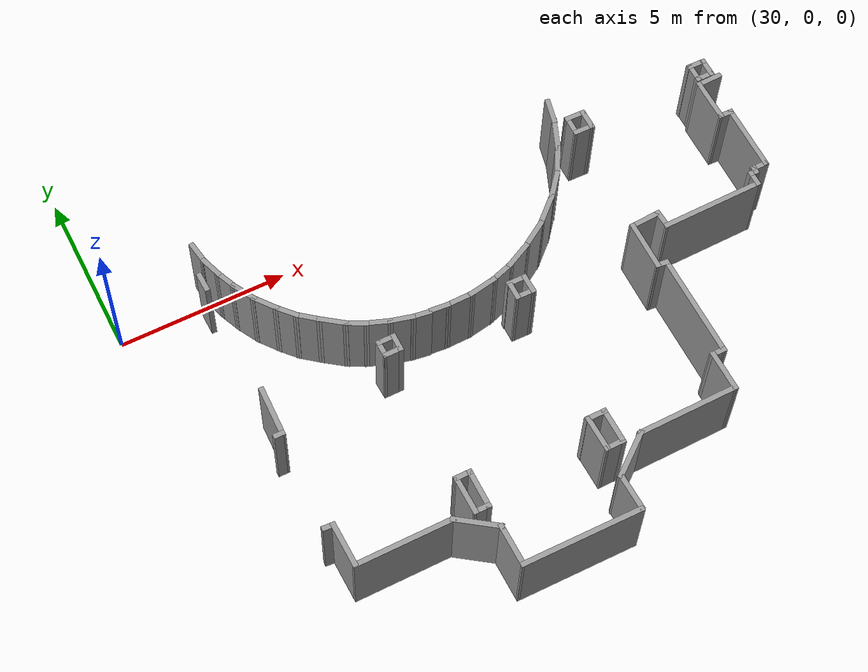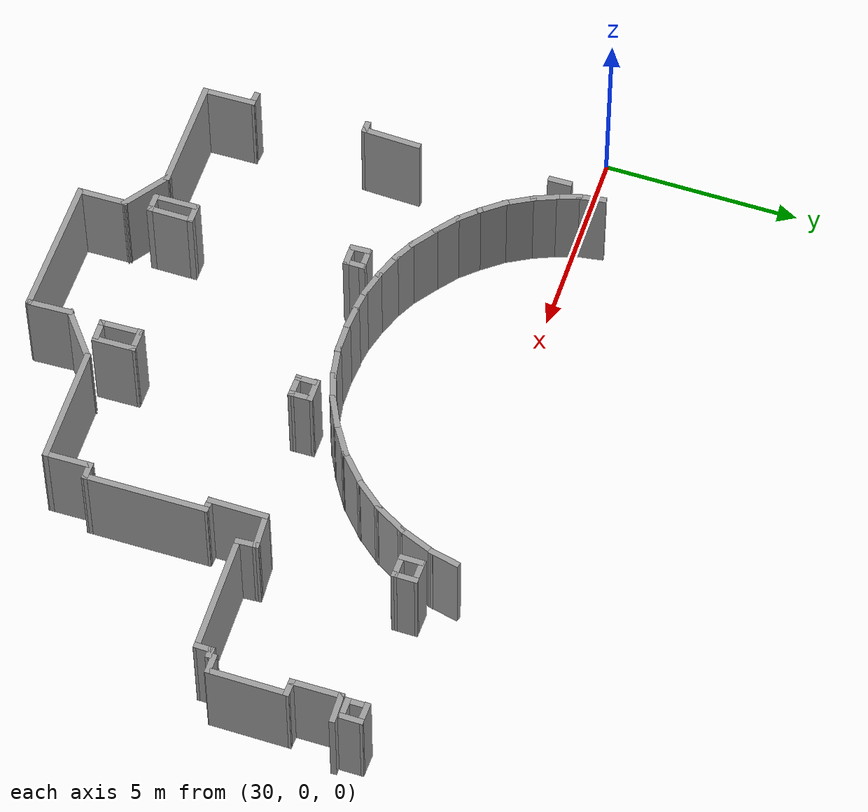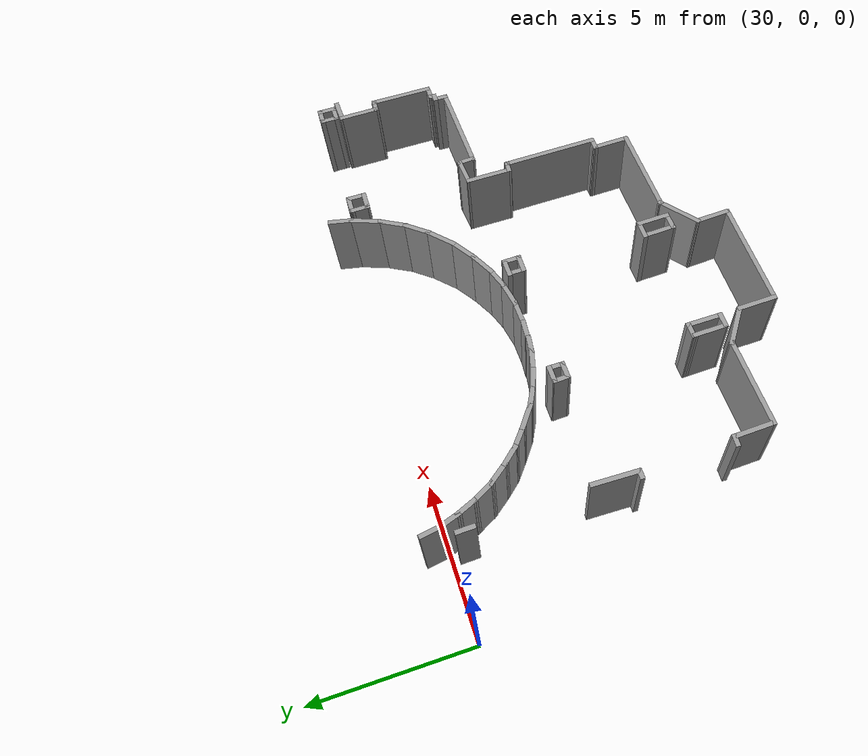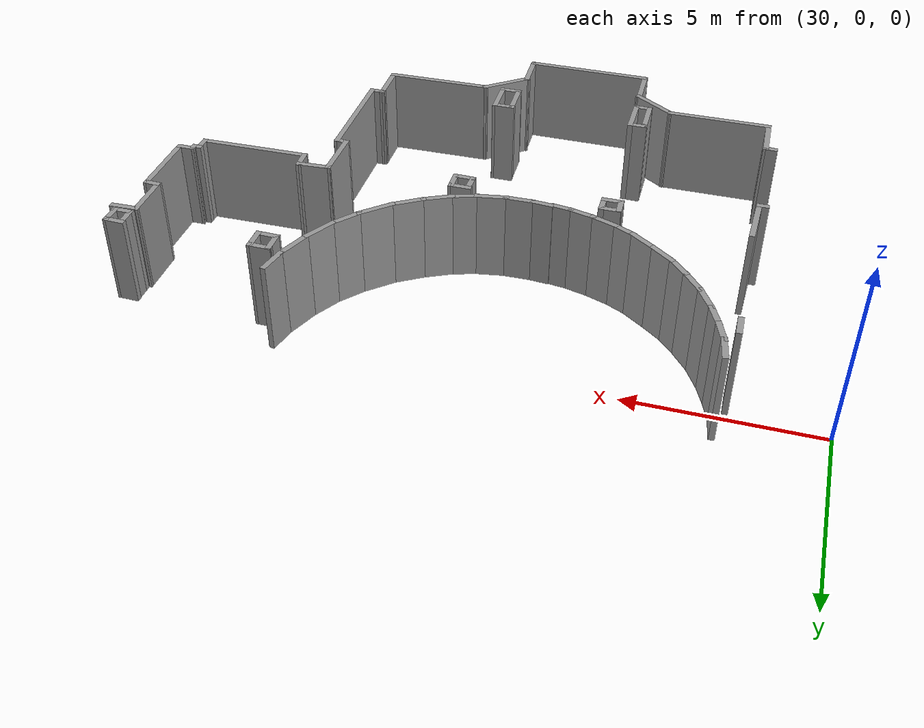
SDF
<sdf version="1.7">
 <model name="TD_n1_largo">
  <pose>-6.3187 -9.13173 0 0 -0 0</pose>
  <link name="Wall_437">
   <collision name="Wall_437_Collision">
    <geometry><box><size>1.53803 0.15 2.5</size></box></geometry>
    <pose>0 0 1.25 0 -0 0</pose>
   </collision>
   <visual name="Wall_437_Visual">
    <pose>0 0 1.25 0 -0 0</pose>
    <geometry><box><size>1.53803 0.15 2.5</size></box></geometry>
    <material>
     <script><uri>file://media/materials/scripts/gazebo.material</uri><name>Gazebo/Grey</name></script>
     <ambient>1 1 1 1</ambient>
    </material>
    <meta><layer>0</layer></meta>
   </visual>
   <pose>38.8578 4.26028 0 0 -0 -1.60412</pose>
  </link>
  <link name="Wall_438">
   <collision name="Wall_438_Collision">
    <geometry><box><size>0.335045 0.15 2.5</size></box></geometry>
    <pose>0 0 1.25 0 -0 0</pose>
   </collision>
   <visual name="Wall_438_Visual">
    <pose>0 0 1.25 0 -0 0</pose>
    <geometry><box><size>0.335045 0.15 2.5</size></box></geometry>
    <material>
     <script><uri>file://media/materials/scripts/gazebo.material</uri><name>Gazebo/Grey</name></script>
     <ambient>1 1 1 1</ambient>
    </material>
    <meta><layer>0</layer></meta>
   </visual>
   <pose>38.7422 3.56636 0 0 -0 3.14159</pose>
  </link>
  <link name="Wall_440">
   <collision name="Wall_440_Collision">
    <geometry><box><size>0.396963 0.15 2.5</size></box></geometry>
    <pose>0 0 1.25 0 -0 0</pose>
   </collision>
   <visual name="Wall_440_Visual">
    <pose>0 0 1.25 0 -0 0</pose>
    <geometry><box><size>0.396963 0.15 2.5</size></box></geometry>
    <material>
     <script><uri>file://media/materials/scripts/gazebo.material</uri><name>Gazebo/Grey</name></script>
     <ambient>1 1 1 1</ambient>
    </material>
    <meta><layer>0</layer></meta>
   </visual>
   <pose>38.7962 0.643183 0 0 -0 -0.070555</pose>
  </link>
  <link name="Wall_443">
   <collision name="Wall_443_Collision">
    <geometry><box><size>1.36789 0.15 2.5</size></box></geometry>
    <pose>0 0 1.25 0 -0 0</pose>
   </collision>
   <visual name="Wall_443_Visual">
    <pose>0 0 1.25 0 -0 0</pose>
    <geometry><box><size>1.36789 0.15 2.5</size></box></geometry>
    <material>
     <script><uri>file://media/materials/scripts/gazebo.material</uri><name>Gazebo/Grey</name></script>
     <ambient>1 1 1 1</ambient>
    </material>
    <meta><layer>0</layer></meta>
   </visual>
   <pose>38.9326 0.025767 0 0 -0 1.59222</pose>
  </link>
  <link name="Wall_445">
   <collision name="Wall_445_Collision">
    <geometry><box><size>2.94132 0.15 2.5</size></box></geometry>
    <pose>0 0 1.25 0 -0 0</pose>
   </collision>
   <visual name="Wall_445_Visual">
    <pose>0 0 1.25 0 -0 0</pose>
    <geometry><box><size>2.94132 0.15 2.5</size></box></geometry>
    <material>
     <script><uri>file://media/materials/scripts/gazebo.material</uri><name>Gazebo/Grey</name></script>
     <ambient>1 1 1 1</ambient>
    </material>
    <meta><layer>0</layer></meta>
   </visual>
   <pose>40.3413 -0.595973 0 0 -0 0.003115</pose>
  </link>
  <link name="Wall_446">
   <collision name="Wall_446_Collision">
    <geometry><box><size>1.41661 0.15 2.5</size></box></geometry>
    <pose>0 0 1.25 0 -0 0</pose>
   </collision>
   <visual name="Wall_446_Visual">
    <pose>0 0 1.25 0 -0 0</pose>
    <geometry><box><size>1.41661 0.15 2.5</size></box></geometry>
    <material>
     <script><uri>file://media/materials/scripts/gazebo.material</uri><name>Gazebo/Grey</name></script>
     <ambient>1 1 1 1</ambient>
    </material>
    <meta><layer>0</layer></meta>
   </visual>
   <pose>42.2631 -0.956842 0 0 -0 -0.614663</pose>
  </link>
  <link name="Wall_447">
   <collision name="Wall_447_Collision">
    <geometry><box><size>1.31535 0.15 2.5</size></box></geometry>
    <pose>0 0 1.25 0 -0 0</pose>
   </collision>
   <visual name="Wall_447_Visual">
    <pose>0 0 1.25 0 -0 0</pose>
    <geometry><box><size>1.31535 0.15 2.5</size></box></geometry>
    <material>
     <script><uri>file://media/materials/scripts/gazebo.material</uri><name>Gazebo/Grey</name></script>
     <ambient>1 1 1 1</ambient>
    </material>
    <meta><layer>0</layer></meta>
   </visual>
   <pose>42.7804 -1.90467 0 0 -0 -1.55587</pose>
  </link>
  <link name="Wall_448">
   <collision name="Wall_448_Collision">
    <geometry><box><size>3.59979 0.15 2.5</size></box></geometry>
    <pose>0 0 1.25 0 -0 0</pose>
   </collision>
   <visual name="Wall_448_Visual">
    <pose>0 0 1.25 0 -0 0</pose>
    <geometry><box><size>3.59979 0.15 2.5</size></box></geometry>
    <material>
     <script><uri>file://media/materials/scripts/gazebo.material</uri><name>Gazebo/Grey</name></script>
     <ambient>1 1 1 1</ambient>
    </material>
    <meta><layer>0</layer></meta>
   </visual>
   <pose>44.514 -2.4955 0 0 -0 -0.004765</pose>
  </link>
  <link name="Wall_450">
   <collision name="Wall_450_Collision">
    <geometry><box><size>1.15648 0.15 2.5</size></box></geometry>
    <pose>0 0 1.25 0 -0 0</pose>
   </collision>
   <visual name="Wall_450_Visual">
    <pose>0 0 1.25 0 -0 0</pose>
    <geometry><box><size>1.15648 0.15 2.5</size></box></geometry>
    <material>
     <script><uri>file://media/materials/scripts/gazebo.material</uri><name>Gazebo/Grey</name></script>
     <ambient>1 1 1 1</ambient>
    </material>
    <meta><layer>0</layer></meta>
   </visual>
   <pose>46.2389 -1.96065 0 0 -0 1.61078</pose>
  </link>
  <link name="Wall_451">
   <collision name="Wall_451_Collision">
    <geometry><box><size>1.51016 0.15 2.5</size></box></geometry>
    <pose>0 0 1.25 0 -0 0</pose>
   </collision>
   <visual name="Wall_451_Visual">
    <pose>0 0 1.25 0 -0 0</pose>
    <geometry><box><size>1.51016 0.15 2.5</size></box></geometry>
    <material>
     <script><uri>file://media/materials/scripts/gazebo.material</uri><name>Gazebo/Grey</name></script>
     <ambient>1 1 1 1</ambient>
    </material>
    <meta><layer>0</layer></meta>
   </visual>
   <pose>46.7518 -1.03543 0 0 -0 0.670122</pose>
  </link>
  <link name="Wall_452">
   <collision name="Wall_452_Collision">
    <geometry><box><size>3.04698 0.15 2.5</size></box></geometry>
    <pose>0 0 1.25 0 -0 0</pose>
   </collision>
   <visual name="Wall_452_Visual">
    <pose>0 0 1.25 0 -0 0</pose>
    <geometry><box><size>3.04698 0.15 2.5</size></box></geometry>
    <material>
     <script><uri>file://media/materials/scripts/gazebo.material</uri><name>Gazebo/Grey</name></script>
     <ambient>1 1 1 1</ambient>
    </material>
    <meta><layer>0</layer></meta>
   </visual>
   <pose>48.733 -0.592927 0 0 -0 0.013888</pose>
  </link>
  <link name="Wall_453">
   <collision name="Wall_453_Collision">
    <geometry><box><size>1.25643 0.15 2.5</size></box></geometry>
    <pose>0 0 1.25 0 -0 0</pose>
   </collision>
   <visual name="Wall_453_Visual">
    <pose>0 0 1.25 0 -0 0</pose>
    <geometry><box><size>1.25643 0.15 2.5</size></box></geometry>
    <material>
     <script><uri>file://media/materials/scripts/gazebo.material</uri><name>Gazebo/Grey</name></script>
     <ambient>1 1 1 1</ambient>
    </material>
    <meta><layer>0</layer></meta>
   </visual>
   <pose>50.1711 -0.01969 0 0 -0 1.58898</pose>
  </link>
  <link name="Wall_454">
   <collision name="Wall_454_Collision">
    <geometry><box><size>0.472445 0.15 2.5</size></box></geometry>
    <pose>0 0 1.25 0 -0 0</pose>
   </collision>
   <visual name="Wall_454_Visual">
    <pose>0 0 1.25 0 -0 0</pose>
    <geometry><box><size>0.472445 0.15 2.5</size></box></geometry>
    <material>
     <script><uri>file://media/materials/scripts/gazebo.material</uri><name>Gazebo/Grey</name></script>
     <ambient>1 1 1 1</ambient>
    </material>
    <meta><layer>0</layer></meta>
   </visual>
   <pose>50.3219 0.533433 0 0 -0 0</pose>
  </link>
  <link name="Wall_456">
   <collision name="Wall_456_Collision">
    <geometry><box><size>3.16286 0.15 2.5</size></box></geometry>
    <pose>0 0 1.25 0 -0 0</pose>
   </collision>
   <visual name="Wall_456_Visual">
    <pose>0 0 1.25 0 -0 0</pose>
    <geometry><box><size>3.16286 0.15 2.5</size></box></geometry>
    <material>
     <script><uri>file://media/materials/scripts/gazebo.material</uri><name>Gazebo/Grey</name></script>
     <ambient>1 1 1 1</ambient>
    </material>
    <meta><layer>0</layer></meta>
   </visual>
   <pose>50.467 2.03982 0 0 -0 1.58133</pose>
  </link>
  <link name="Wall_457">
   <collision name="Wall_457_Collision">
    <geometry><box><size>0.417329 0.15 2.5</size></box></geometry>
    <pose>0 0 1.25 0 -0 0</pose>
   </collision>
   <visual name="Wall_457_Visual">
    <pose>0 0 1.25 0 -0 0</pose>
    <geometry><box><size>0.417329 0.15 2.5</size></box></geometry>
    <material>
     <script><uri>file://media/materials/scripts/gazebo.material</uri><name>Gazebo/Grey</name></script>
     <ambient>1 1 1 1</ambient>
    </material>
    <meta><layer>0</layer></meta>
   </visual>
   <pose>50.3181 3.55952 0 0 -0 3.04192</pose>
  </link>
  <link name="Wall_458">
   <collision name="Wall_458_Collision">
    <geometry><box><size>1.53321 0.15 2.5</size></box></geometry>
    <pose>0 0 1.25 0 -0 0</pose>
   </collision>
   <visual name="Wall_458_Visual">
    <pose>0 0 1.25 0 -0 0</pose>
    <geometry><box><size>1.53321 0.15 2.5</size></box></geometry>
    <material>
     <script><uri>file://media/materials/scripts/gazebo.material</uri><name>Gazebo/Grey</name></script>
     <ambient>1 1 1 1</ambient>
    </material>
    <meta><layer>0</layer></meta>
   </visual>
   <pose>50.1851 4.26442 0 0 -0 1.5708</pose>
  </link>
  <link name="Wall_459">
   <collision name="Wall_459_Collision">
    <geometry><box><size>0.976321 0.15 2.5</size></box></geometry>
    <pose>0 0 1.25 0 -0 0</pose>
   </collision>
   <visual name="Wall_459_Visual">
    <pose>0 0 1.25 0 -0 0</pose>
    <geometry><box><size>0.976321 0.15 2.5</size></box></geometry>
    <material>
     <script><uri>file://media/materials/scripts/gazebo.material</uri><name>Gazebo/Grey</name></script>
     <ambient>1 1 1 1</ambient>
    </material>
    <meta><layer>0</layer></meta>
   </visual>
   <pose>50.5974 4.98263 0 0 -0 0.064427</pose>
  </link>
  <link name="Wall_460">
   <collision name="Wall_460_Collision">
    <geometry><box><size>0.602985 0.15 2.5</size></box></geometry>
    <pose>0 0 1.25 0 -0 0</pose>
   </collision>
   <visual name="Wall_460_Visual">
    <pose>0 0 1.25 0 -0 0</pose>
    <geometry><box><size>0.602985 0.15 2.5</size></box></geometry>
    <material>
     <script><uri>file://media/materials/scripts/gazebo.material</uri><name>Gazebo/Grey</name></script>
     <ambient>1 1 1 1</ambient>
    </material>
    <meta><layer>0</layer></meta>
   </visual>
   <pose>51.023 4.78313 0 0 -0 -1.51204</pose>
  </link>
  <link name="Wall_461">
   <collision name="Wall_461_Collision">
    <geometry><box><size>3.1031 0.15 2.5</size></box></geometry>
    <pose>0 0 1.25 0 -0 0</pose>
   </collision>
   <visual name="Wall_461_Visual">
    <pose>0 0 1.25 0 -0 0</pose>
    <geometry><box><size>3.1031 0.15 2.5</size></box></geometry>
    <material>
     <script><uri>file://media/materials/scripts/gazebo.material</uri><name>Gazebo/Grey</name></script>
     <ambient>1 1 1 1</ambient>
    </material>
    <meta><layer>0</layer></meta>
   </visual>
   <pose>52.5126 4.58363 0 0 -0 0.018016</pose>
  </link>
  <link name="Wall_462">
   <collision name="Wall_462_Collision">
    <geometry><box><size>0.44728 0.15 2.5</size></box></geometry>
    <pose>0 0 1.25 0 -0 0</pose>
   </collision>
   <visual name="Wall_462_Visual">
    <pose>0 0 1.25 0 -0 0</pose>
    <geometry><box><size>0.44728 0.15 2.5</size></box></geometry>
    <material>
     <script><uri>file://media/materials/scripts/gazebo.material</uri><name>Gazebo/Grey</name></script>
     <ambient>1 1 1 1</ambient>
    </material>
    <meta><layer>0</layer></meta>
   </visual>
   <pose>53.9913 4.75885 0 0 -0 1.5552</pose>
  </link>
  <link name="Wall_464">
   <collision name="Wall_464_Collision">
    <geometry><box><size>0.303496 0.15 2.5</size></box></geometry>
    <pose>0 0 1.25 0 -0 0</pose>
   </collision>
   <visual name="Wall_464_Visual">
    <pose>0 0 1.25 0 -0 0</pose>
    <geometry><box><size>0.303496 0.15 2.5</size></box></geometry>
    <material>
     <script><uri>file://media/materials/scripts/gazebo.material</uri><name>Gazebo/Grey</name></script>
     <ambient>1 1 1 1</ambient>
    </material>
    <meta><layer>0</layer></meta>
   </visual>
   <pose>54.0672 4.96232 0 0 -0 -0.028918</pose>
  </link>
  <link name="Wall_465">
   <collision name="Wall_465_Collision">
    <geometry><box><size>0.270359 0.15 2.5</size></box></geometry>
    <pose>0 0 1.25 0 -0 0</pose>
   </collision>
   <visual name="Wall_465_Visual">
    <pose>0 0 1.25 0 -0 0</pose>
    <geometry><box><size>0.270359 0.15 2.5</size></box></geometry>
    <material>
     <script><uri>file://media/materials/scripts/gazebo.material</uri><name>Gazebo/Grey</name></script>
     <ambient>1 1 1 1</ambient>
    </material>
    <meta><layer>0</layer></meta>
   </visual>
   <pose>54.1458 5.02025 0 0 -0 1.53956</pose>
  </link>
  <link name="Wall_466">
   <collision name="Wall_466_Collision">
    <geometry><box><size>0.529696 0.15 2.5</size></box></geometry>
    <pose>0 0 1.25 0 -0 0</pose>
   </collision>
   <visual name="Wall_466_Visual">
    <pose>0 0 1.25 0 -0 0</pose>
    <geometry><box><size>0.529696 0.15 2.5</size></box></geometry>
    <material>
     <script><uri>file://media/materials/scripts/gazebo.material</uri><name>Gazebo/Grey</name></script>
     <ambient>1 1 1 1</ambient>
    </material>
    <meta><layer>0</layer></meta>
   </visual>
   <pose>54.3376 5.0804 0 0 -0 0</pose>
  </link>
  <link name="Wall_468">
   <collision name="Wall_468_Collision">
    <geometry><box><size>2.05 0.15 2.5</size></box></geometry>
    <pose>0 0 1.25 0 -0 0</pose>
   </collision>
   <visual name="Wall_468_Visual">
    <pose>0 0 1.25 0 -0 0</pose>
    <geometry><box><size>2.05 0.15 2.5</size></box></geometry>
    <material>
     <script><uri>file://media/materials/scripts/gazebo.material</uri><name>Gazebo/Grey</name></script>
     <ambient>1 1 1 1</ambient>
    </material>
    <meta><layer>0</layer></meta>
   </visual>
   <pose>54.5309 6.0477 0 0 -0 1.5708</pose>
  </link>
  <link name="Wall_469">
   <collision name="Wall_469_Collision">
    <geometry><box><size>0.470156 0.15 2.5</size></box></geometry>
    <pose>0 0 1.25 0 -0 0</pose>
   </collision>
   <visual name="Wall_469_Visual">
    <pose>0 0 1.25 0 -0 0</pose>
    <geometry><box><size>0.470156 0.15 2.5</size></box></geometry>
    <material>
     <script><uri>file://media/materials/scripts/gazebo.material</uri><name>Gazebo/Grey</name></script>
     <ambient>1 1 1 1</ambient>
    </material>
    <meta><layer>0</layer></meta>
   </visual>
   <pose>54.3709 7.0027 0 0 -0 3.11035</pose>
  </link>
  <link name="Wall_470">
   <collision name="Wall_470_Collision">
    <geometry><box><size>1.35004 0.15 2.5</size></box></geometry>
    <pose>0 0 1.25 0 -0 0</pose>
   </collision>
   <visual name="Wall_470_Visual">
    <pose>0 0 1.25 0 -0 0</pose>
    <geometry><box><size>1.35004 0.15 2.5</size></box></geometry>
    <material>
     <script><uri>file://media/materials/scripts/gazebo.material</uri><name>Gazebo/Grey</name></script>
     <ambient>1 1 1 1</ambient>
    </material>
    <meta><layer>0</layer></meta>
   </visual>
   <pose>54.2059 7.6077 0 0 -0 1.57913</pose>
  </link>
  <link name="Wall_471">
   <collision name="Wall_471_Collision">
    <geometry><box><size>0.800308 0.15 2.5</size></box></geometry>
    <pose>0 0 1.25 0 -0 0</pose>
   </collision>
   <visual name="Wall_471_Visual">
    <pose>0 0 1.25 0 -0 0</pose>
    <geometry><box><size>0.800308 0.15 2.5</size></box></geometry>
    <material>
     <script><uri>file://media/materials/scripts/gazebo.material</uri><name>Gazebo/Grey</name></script>
     <ambient>1 1 1 1</ambient>
    </material>
    <meta><layer>0</layer></meta>
   </visual>
   <pose>54.5259 8.2177 0 0 -0 0.03076</pose>
  </link>
  <link name="Wall_481">
   <collision name="Wall_481_Collision">
    <geometry><box><size>0.644634 0.15 2.5</size></box></geometry>
    <pose>0 0 1.25 0 -0 0</pose>
   </collision>
   <visual name="Wall_481_Visual">
    <pose>0 0 1.25 0 -0 0</pose>
    <geometry><box><size>0.644634 0.15 2.5</size></box></geometry>
    <material>
     <script><uri>file://media/materials/scripts/gazebo.material</uri><name>Gazebo/Grey</name></script>
     <ambient>1 1 1 1</ambient>
    </material>
    <meta><layer>0</layer></meta>
   </visual>
   <pose>50.494 8.85323 0 0 -0 -0.023252</pose>
  </link>
  <link name="Wall_482">
   <collision name="Wall_482_Collision">
    <geometry><box><size>0.656 0.15 2.5</size></box></geometry>
    <pose>0 0 1.25 0 -0 0</pose>
   </collision>
   <visual name="Wall_482_Visual">
    <pose>0 0 1.25 0 -0 0</pose>
    <geometry><box><size>0.656 0.15 2.5</size></box></geometry>
    <material>
     <script><uri>file://media/materials/scripts/gazebo.material</uri><name>Gazebo/Grey</name></script>
     <ambient>1 1 1 1</ambient>
    </material>
    <meta><layer>0</layer></meta>
   </visual>
   <pose>50.7413 8.59448 0 0 -0 -1.5708</pose>
  </link>
  <link name="Wall_483">
   <collision name="Wall_483_Collision">
    <geometry><box><size>0.644634 0.15 2.5</size></box></geometry>
    <pose>0 0 1.25 0 -0 0</pose>
   </collision>
   <visual name="Wall_483_Visual">
    <pose>0 0 1.25 0 -0 0</pose>
    <geometry><box><size>0.644634 0.15 2.5</size></box></geometry>
    <material>
     <script><uri>file://media/materials/scripts/gazebo.material</uri><name>Gazebo/Grey</name></script>
     <ambient>1 1 1 1</ambient>
    </material>
    <meta><layer>0</layer></meta>
   </visual>
   <pose>50.494 8.34723 0 0 -0 3.11834</pose>
  </link>
  <link name="Wall_484">
   <collision name="Wall_484_Collision">
    <geometry><box><size>0.6215 0.15 2.5</size></box></geometry>
    <pose>0 0 1.25 0 -0 0</pose>
   </collision>
   <visual name="Wall_484_Visual">
    <pose>0 0 1.25 0 -0 0</pose>
    <geometry><box><size>0.6215 0.15 2.5</size></box></geometry>
    <material>
     <script><uri>file://media/materials/scripts/gazebo.material</uri><name>Gazebo/Grey</name></script>
     <ambient>1 1 1 1</ambient>
    </material>
    <meta><layer>0</layer></meta>
   </visual>
   <pose>50.2468 8.58873 0 0 -0 1.5708</pose>
  </link>
  <link name="Wall_486">
   <collision name="Wall_486_Collision">
    <geometry><box><size>0.587151 0.15 2.5</size></box></geometry>
    <pose>0 0 1.25 0 -0 0</pose>
   </collision>
   <visual name="Wall_486_Visual">
    <pose>0 0 1.25 0 -0 0</pose>
    <geometry><box><size>0.587151 0.15 2.5</size></box></geometry>
    <material>
     <script><uri>file://media/materials/scripts/gazebo.material</uri><name>Gazebo/Grey</name></script>
     <ambient>1 1 1 1</ambient>
    </material>
    <meta><layer>0</layer></meta>
   </visual>
   <pose>54.4788 8.85323 0 0 -0 -0.02631</pose>
  </link>
  <link name="Wall_487">
   <collision name="Wall_487_Collision">
    <geometry><box><size>0.61 0.15 2.5</size></box></geometry>
    <pose>0 0 1.25 0 -0 0</pose>
   </collision>
   <visual name="Wall_487_Visual">
    <pose>0 0 1.25 0 -0 0</pose>
    <geometry><box><size>0.61 0.15 2.5</size></box></geometry>
    <material>
     <script><uri>file://media/materials/scripts/gazebo.material</uri><name>Gazebo/Grey</name></script>
     <ambient>1 1 1 1</ambient>
    </material>
    <meta><layer>0</layer></meta>
   </visual>
   <pose>54.6973 8.61748 0 0 -0 -1.5708</pose>
  </link>
  <link name="Wall_488">
   <collision name="Wall_488_Collision">
    <geometry><box><size>0.5755 0.15 2.5</size></box></geometry>
    <pose>0 0 1.25 0 -0 0</pose>
   </collision>
   <visual name="Wall_488_Visual">
    <pose>0 0 1.25 0 -0 0</pose>
    <geometry><box><size>0.5755 0.15 2.5</size></box></geometry>
    <material>
     <script><uri>file://media/materials/scripts/gazebo.material</uri><name>Gazebo/Grey</name></script>
     <ambient>1 1 1 1</ambient>
    </material>
    <meta><layer>0</layer></meta>
   </visual>
   <pose>54.4845 8.38748 0 0 -0 3.14159</pose>
  </link>
  <link name="Wall_489">
   <collision name="Wall_489_Collision">
    <geometry><box><size>0.587 0.15 2.5</size></box></geometry>
    <pose>0 0 1.25 0 -0 0</pose>
   </collision>
   <visual name="Wall_489_Visual">
    <pose>0 0 1.25 0 -0 0</pose>
    <geometry><box><size>0.587 0.15 2.5</size></box></geometry>
    <material>
     <script><uri>file://media/materials/scripts/gazebo.material</uri><name>Gazebo/Grey</name></script>
     <ambient>1 1 1 1</ambient>
    </material>
    <meta><layer>0</layer></meta>
   </visual>
   <pose>54.2718 8.60598 0 0 -0 1.5708</pose>
  </link>
  <link name="Wall_491">
   <collision name="Wall_491_Collision">
    <geometry><box><size>0.591316 0.15 2.5</size></box></geometry>
    <pose>0 0 1.25 0 -0 0</pose>
   </collision>
   <visual name="Wall_491_Visual">
    <pose>0 0 1.25 0 -0 0</pose>
    <geometry><box><size>0.591316 0.15 2.5</size></box></geometry>
    <material>
     <script><uri>file://media/materials/scripts/gazebo.material</uri><name>Gazebo/Grey</name></script>
     <ambient>1 1 1 1</ambient>
    </material>
    <meta><layer>0</layer></meta>
   </visual>
   <pose>42.5057 4.82608 0 0 -0 0</pose>
  </link>
  <link name="Wall_492">
   <collision name="Wall_492_Collision">
    <geometry><box><size>0.560918 0.15 2.5</size></box></geometry>
    <pose>0 0 1.25 0 -0 0</pose>
   </collision>
   <visual name="Wall_492_Visual">
    <pose>0 0 1.25 0 -0 0</pose>
    <geometry><box><size>0.560918 0.15 2.5</size></box></geometry>
    <material>
     <script><uri>file://media/materials/scripts/gazebo.material</uri><name>Gazebo/Grey</name></script>
     <ambient>1 1 1 1</ambient>
    </material>
    <meta><layer>0</layer></meta>
   </visual>
   <pose>42.7263 4.62076 0 0 -0 -1.5708</pose>
  </link>
  <link name="Wall_493">
   <collision name="Wall_493_Collision">
    <geometry><box><size>0.591316 0.15 2.5</size></box></geometry>
    <pose>0 0 1.25 0 -0 0</pose>
   </collision>
   <visual name="Wall_493_Visual">
    <pose>0 0 1.25 0 -0 0</pose>
    <geometry><box><size>0.591316 0.15 2.5</size></box></geometry>
    <material>
     <script><uri>file://media/materials/scripts/gazebo.material</uri><name>Gazebo/Grey</name></script>
     <ambient>1 1 1 1</ambient>
    </material>
    <meta><layer>0</layer></meta>
   </visual>
   <pose>42.5057 4.41545 0 0 -0 3.14159</pose>
  </link>
  <link name="Wall_494">
   <collision name="Wall_494_Collision">
    <geometry><box><size>0.530523 0.15 2.5</size></box></geometry>
    <pose>0 0 1.25 0 -0 0</pose>
   </collision>
   <visual name="Wall_494_Visual">
    <pose>0 0 1.25 0 -0 0</pose>
    <geometry><box><size>0.530523 0.15 2.5</size></box></geometry>
    <material>
     <script><uri>file://media/materials/scripts/gazebo.material</uri><name>Gazebo/Grey</name></script>
     <ambient>1 1 1 1</ambient>
    </material>
    <meta><layer>0</layer></meta>
   </visual>
   <pose>42.2776 4.60556 0 0 -0 1.61078</pose>
  </link>
  <link name="Wall_496">
   <collision name="Wall_496_Collision">
    <geometry><box><size>0.545428 0.15 2.5</size></box></geometry>
    <pose>0 0 1.25 0 -0 0</pose>
   </collision>
   <visual name="Wall_496_Visual">
    <pose>0 0 1.25 0 -0 0</pose>
    <geometry><box><size>0.545428 0.15 2.5</size></box></geometry>
    <material>
     <script><uri>file://media/materials/scripts/gazebo.material</uri><name>Gazebo/Grey</name></script>
     <ambient>1 1 1 1</ambient>
    </material>
    <meta><layer>0</layer></meta>
   </visual>
   <pose>42.5438 0.385128 0 0 -0 0</pose>
  </link>
  <link name="Wall_497">
   <collision name="Wall_497_Collision">
    <geometry><box><size>1.19951 0.15 2.5</size></box></geometry>
    <pose>0 0 1.25 0 -0 0</pose>
   </collision>
   <visual name="Wall_497_Visual">
    <pose>0 0 1.25 0 -0 0</pose>
    <geometry><box><size>1.19951 0.15 2.5</size></box></geometry>
    <material>
     <script><uri>file://media/materials/scripts/gazebo.material</uri><name>Gazebo/Grey</name></script>
     <ambient>1 1 1 1</ambient>
    </material>
    <meta><layer>0</layer></meta>
   </visual>
   <pose>42.7415 -0.139574 0 0 -0 -1.5708</pose>
  </link>
  <link name="Wall_498">
   <collision name="Wall_498_Collision">
    <geometry><box><size>0.530219 0.15 2.5</size></box></geometry>
    <pose>0 0 1.25 0 -0 0</pose>
   </collision>
   <visual name="Wall_498_Visual">
    <pose>0 0 1.25 0 -0 0</pose>
    <geometry><box><size>0.530219 0.15 2.5</size></box></geometry>
    <material>
     <script><uri>file://media/materials/scripts/gazebo.material</uri><name>Gazebo/Grey</name></script>
     <ambient>1 1 1 1</ambient>
    </material>
    <meta><layer>0</layer></meta>
   </visual>
   <pose>42.5514 -0.664276 0 0 -0 3.14159</pose>
  </link>
  <link name="Wall_499">
   <collision name="Wall_499_Collision">
    <geometry><box><size>1.15389 0.15 2.5</size></box></geometry>
    <pose>0 0 1.25 0 -0 0</pose>
   </collision>
   <visual name="Wall_499_Visual">
    <pose>0 0 1.25 0 -0 0</pose>
    <geometry><box><size>1.15389 0.15 2.5</size></box></geometry>
    <material>
     <script><uri>file://media/materials/scripts/gazebo.material</uri><name>Gazebo/Grey</name></script>
     <ambient>1 1 1 1</ambient>
    </material>
    <meta><layer>0</layer></meta>
   </visual>
   <pose>42.3536 -0.162387 0 0 -0 1.58595</pose>
  </link>
  <link name="Wall_500">
   <collision name="Wall_500_Collision">
    <geometry><box><size>0.15 0.15 2.5</size></box></geometry>
    <pose>0 0 1.25 0 -0 0</pose>
   </collision>
   <visual name="Wall_500_Visual">
    <pose>0 0 1.25 0 -0 0</pose>
    <geometry><box><size>0.15 0.15 2.5</size></box></geometry>
    <material>
     <script><uri>file://media/materials/scripts/gazebo.material</uri><name>Gazebo/Grey</name></script>
     <ambient>1 1 1 1</ambient>
    </material>
    <meta><layer>0</layer></meta>
   </visual>
   <pose>42.346 0.339502 0 0 -0 0</pose>
  </link>
  <link name="Wall_501">
   <collision name="Wall_501_Collision">
    <geometry><box><size>0.15 0.15 2.5</size></box></geometry>
    <pose>0 0 1.25 0 -0 0</pose>
   </collision>
   <visual name="Wall_501_Visual">
    <pose>0 0 1.25 0 -0 0</pose>
    <geometry><box><size>0.15 0.15 2.5</size></box></geometry>
    <material>
     <script><uri>file://media/materials/scripts/gazebo.material</uri><name>Gazebo/Grey</name></script>
     <ambient>0 0 0 1</ambient>
    </material>
    <meta><layer>0</layer></meta>
   </visual>
   <pose>42.346 0.339502 0 0 -0 0</pose>
  </link>
  <link name="Wall_502">
   <collision name="Wall_502_Collision">
    <geometry><box><size>0.65 0.15 2.5</size></box></geometry>
    <pose>0 0 1.25 0 -0 0</pose>
   </collision>
   <visual name="Wall_502_Visual">
    <pose>0 0 1.25 0 -0 0</pose>
    <geometry><box><size>0.65 0.15 2.5</size></box></geometry>
    <material>
     <script><uri>file://media/materials/scripts/gazebo.material</uri><name>Gazebo/Grey</name></script>
     <ambient>1 1 1 1</ambient>
    </material>
    <meta><layer>0</layer></meta>
   </visual>
   <pose>46.4803 0.355914 0 0 -0 0</pose>
  </link>
  <link name="Wall_503">
   <collision name="Wall_503_Collision">
    <geometry><box><size>1.11047 0.15 2.5</size></box></geometry>
    <pose>0 0 1.25 0 -0 0</pose>
   </collision>
   <visual name="Wall_503_Visual">
    <pose>0 0 1.25 0 -0 0</pose>
    <geometry><box><size>1.11047 0.15 2.5</size></box></geometry>
    <material>
     <script><uri>file://media/materials/scripts/gazebo.material</uri><name>Gazebo/Grey</name></script>
     <ambient>1 1 1 1</ambient>
    </material>
    <meta><layer>0</layer></meta>
   </visual>
   <pose>46.7403 -0.124086 0 0 -0 -1.54997</pose>
  </link>
  <link name="Wall_504">
   <collision name="Wall_504_Collision">
    <geometry><box><size>0.630104 0.15 2.5</size></box></geometry>
    <pose>0 0 1.25 0 -0 0</pose>
   </collision>
   <visual name="Wall_504_Visual">
    <pose>0 0 1.25 0 -0 0</pose>
    <geometry><box><size>0.630104 0.15 2.5</size></box></geometry>
    <material>
     <script><uri>file://media/materials/scripts/gazebo.material</uri><name>Gazebo/Grey</name></script>
     <ambient>1 1 1 1</ambient>
    </material>
    <meta><layer>0</layer></meta>
   </visual>
   <pose>46.5103 -0.609087 0 0 -0 -3.12076</pose>
  </link>
  <link name="Wall_505">
   <collision name="Wall_505_Collision">
    <geometry><box><size>1.10047 0.15 2.5</size></box></geometry>
    <pose>0 0 1.25 0 -0 0</pose>
   </collision>
   <visual name="Wall_505_Visual">
    <pose>0 0 1.25 0 -0 0</pose>
    <geometry><box><size>1.10047 0.15 2.5</size></box></geometry>
    <material>
     <script><uri>file://media/materials/scripts/gazebo.material</uri><name>Gazebo/Grey</name></script>
     <ambient>1 1 1 1</ambient>
    </material>
    <meta><layer>0</layer></meta>
   </visual>
   <pose>46.2553 -0.139086 0 0 -0 1.60237</pose>
  </link>
  <link name="Wall_513">
   <collision name="Wall_513_Collision">
    <geometry><box><size>0.61087 0.15 2.5</size></box></geometry>
    <pose>0 0 1.25 0 -0 0</pose>
   </collision>
   <visual name="Wall_513_Visual">
    <pose>0 0 1.25 0 -0 0</pose>
    <geometry><box><size>0.61087 0.15 2.5</size></box></geometry>
    <material>
     <script><uri>file://media/materials/scripts/gazebo.material</uri><name>Gazebo/Grey</name></script>
     <ambient>1 1 1 1</ambient>
    </material>
    <meta><layer>0</layer></meta>
   </visual>
   <pose>38.8059 8.63024 0 0 -0 -1.55193</pose>
  </link>
  <link name="Wall_517">
   <collision name="Wall_517_Collision">
    <geometry><box><size>0.628261 0.15 2.5</size></box></geometry>
    <pose>0 0 1.25 0 -0 0</pose>
   </collision>
   <visual name="Wall_517_Visual">
    <pose>0 0 1.25 0 -0 0</pose>
    <geometry><box><size>0.628261 0.15 2.5</size></box></geometry>
    <material>
     <script><uri>file://media/materials/scripts/gazebo.material</uri><name>Gazebo/Grey</name></script>
     <ambient>1 1 1 1</ambient>
    </material>
    <meta><layer>0</layer></meta>
   </visual>
   <pose>46.5016 4.86937 0 0 -0 0</pose>
  </link>
  <link name="Wall_518">
   <collision name="Wall_518_Collision">
    <geometry><box><size>0.619646 0.15 2.5</size></box></geometry>
    <pose>0 0 1.25 0 -0 0</pose>
   </collision>
   <visual name="Wall_518_Visual">
    <pose>0 0 1.25 0 -0 0</pose>
    <geometry><box><size>0.619646 0.15 2.5</size></box></geometry>
    <material>
     <script><uri>file://media/materials/scripts/gazebo.material</uri><name>Gazebo/Grey</name></script>
     <ambient>1 1 1 1</ambient>
    </material>
    <meta><layer>0</layer></meta>
   </visual>
   <pose>46.7451 4.63459 0 0 -0 -1.55228</pose>
  </link>
  <link name="Wall_519">
   <collision name="Wall_519_Collision">
    <geometry><box><size>0.619565 0.15 2.5</size></box></geometry>
    <pose>0 0 1.25 0 -0 0</pose>
   </collision>
   <visual name="Wall_519_Visual">
    <pose>0 0 1.25 0 -0 0</pose>
    <geometry><box><size>0.619565 0.15 2.5</size></box></geometry>
    <material>
     <script><uri>file://media/materials/scripts/gazebo.material</uri><name>Gazebo/Grey</name></script>
     <ambient>1 1 1 1</ambient>
    </material>
    <meta><layer>0</layer></meta>
   </visual>
   <pose>46.5146 4.40416 0 0 -0 3.12308</pose>
  </link>
  <link name="Wall_520">
   <collision name="Wall_520_Collision">
    <geometry><box><size>0.541304 0.15 2.5</size></box></geometry>
    <pose>0 0 1.25 0 -0 0</pose>
   </collision>
   <visual name="Wall_520_Visual">
    <pose>0 0 1.25 0 -0 0</pose>
    <geometry><box><size>0.541304 0.15 2.5</size></box></geometry>
    <material>
     <script><uri>file://media/materials/scripts/gazebo.material</uri><name>Gazebo/Grey</name></script>
     <ambient>1 1 1 1</ambient>
    </material>
    <meta><layer>0</layer></meta>
   </visual>
   <pose>46.2798 4.60416 0 0 -0 1.5708</pose>
  </link>
  <link name="Wall_601">
   <collision name="Wall_601_Collision">
    <geometry><box><size>0.614572 0.15 2.5</size></box></geometry>
    <pose>0 0 1.25 0 -0 0</pose>
   </collision>
   <visual name="Wall_601_Visual">
    <pose>0 0 1.25 0 -0 0</pose>
    <geometry><box><size>0.614572 0.15 2.5</size></box></geometry>
    <material>
     <script><uri>file://media/materials/scripts/gazebo.material</uri><name>Gazebo/Grey</name></script>
     <ambient>1 1 1 1</ambient>
    </material>
    <meta><layer>0</layer></meta>
   </visual>
   <pose>44.2382 5.05541 0 0 -0 -0.085505</pose>
  </link>
  <link name="Wall_602">
   <collision name="Wall_602_Collision">
    <geometry><box><size>0.877495 0.15 2.5</size></box></geometry>
    <pose>0 0 1.25 0 -0 0</pose>
   </collision>
   <visual name="Wall_602_Visual">
    <pose>0 0 1.25 0 -0 0</pose>
    <geometry><box><size>0.877495 0.15 2.5</size></box></geometry>
    <material>
     <script><uri>file://media/materials/scripts/gazebo.material</uri><name>Gazebo/Grey</name></script>
     <ambient>1 1 1 1</ambient>
    </material>
    <meta><layer>0</layer></meta>
   </visual>
   <pose>44.8333 5.04218 0 0 -0 0.01818</pose>
  </link>
  <link name="Wall_603">
   <collision name="Wall_603_Collision">
    <geometry><box><size>0.915338 0.15 2.5</size></box></geometry>
    <pose>0 0 1.25 0 -0 0</pose>
   </collision>
   <visual name="Wall_603_Visual">
    <pose>0 0 1.25 0 -0 0</pose>
    <geometry><box><size>0.915338 0.15 2.5</size></box></geometry>
    <material>
     <script><uri>file://media/materials/scripts/gazebo.material</uri><name>Gazebo/Grey</name></script>
     <ambient>1 1 1 1</ambient>
    </material>
    <meta><layer>0</layer></meta>
   </visual>
   <pose>45.5739 5.11492 0 0 -0 0.173671</pose>
  </link>
  <link name="Wall_604">
   <collision name="Wall_604_Collision">
    <geometry><box><size>0.789877 0.15 2.5</size></box></geometry>
    <pose>0 0 1.25 0 -0 0</pose>
   </collision>
   <visual name="Wall_604_Visual">
    <pose>0 0 1.25 0 -0 0</pose>
    <geometry><box><size>0.789877 0.15 2.5</size></box></geometry>
    <material>
     <script><uri>file://media/materials/scripts/gazebo.material</uri><name>Gazebo/Grey</name></script>
     <ambient>1 1 1 1</ambient>
    </material>
    <meta><layer>0</layer></meta>
   </visual>
   <pose>46.255 5.28024 0 0 -0 0.315215</pose>
  </link>
  <link name="Wall_605">
   <collision name="Wall_605_Collision">
    <geometry><box><size>0.918872 0.15 2.5</size></box></geometry>
    <pose>0 0 1.25 0 -0 0</pose>
   </collision>
   <visual name="Wall_605_Visual">
    <pose>0 0 1.25 0 -0 0</pose>
    <geometry><box><size>0.918872 0.15 2.5</size></box></geometry>
    <material>
     <script><uri>file://media/materials/scripts/gazebo.material</uri><name>Gazebo/Grey</name></script>
     <ambient>1 1 1 1</ambient>
    </material>
    <meta><layer>0</layer></meta>
   </visual>
   <pose>46.903 5.55135 0 0 -0 0.463648</pose>
  </link>
  <link name="Wall_606">
   <collision name="Wall_606_Collision">
    <geometry><box><size>0.982755 0.15 2.5</size></box></geometry>
    <pose>0 0 1.25 0 -0 0</pose>
   </collision>
   <visual name="Wall_606_Visual">
    <pose>0 0 1.25 0 -0 0</pose>
    <geometry><box><size>0.982755 0.15 2.5</size></box></geometry>
    <material>
     <script><uri>file://media/materials/scripts/gazebo.material</uri><name>Gazebo/Grey</name></script>
     <ambient>1 1 1 1</ambient>
    </material>
    <meta><layer>0</layer></meta>
   </visual>
   <pose>47.5974 5.9481 0 0 -0 0.570383</pose>
  </link>
  <link name="Wall_607">
   <collision name="Wall_607_Collision">
    <geometry><box><size>1.06721 0.15 2.5</size></box></geometry>
    <pose>0 0 1.25 0 -0 0</pose>
   </collision>
   <visual name="Wall_607_Visual">
    <pose>0 0 1.25 0 -0 0</pose>
    <geometry><box><size>1.06721 0.15 2.5</size></box></geometry>
    <material>
     <script><uri>file://media/materials/scripts/gazebo.material</uri><name>Gazebo/Grey</name></script>
     <ambient>1 1 1 1</ambient>
    </material>
    <meta><layer>0</layer></meta>
   </visual>
   <pose>48.2851 6.48371 0 0 -0 0.744605</pose>
  </link>
  <link name="Wall_608">
   <collision name="Wall_608_Collision">
    <geometry><box><size>0.939079 0.15 2.5</size></box></geometry>
    <pose>0 0 1.25 0 -0 0</pose>
   </collision>
   <visual name="Wall_608_Visual">
    <pose>0 0 1.25 0 -0 0</pose>
    <geometry><box><size>0.939079 0.15 2.5</size></box></geometry>
    <material>
     <script><uri>file://media/materials/scripts/gazebo.material</uri><name>Gazebo/Grey</name></script>
     <ambient>1 1 1 1</ambient>
    </material>
    <meta><layer>0</layer></meta>
   </visual>
   <pose>48.8736 7.09867 0 0 -0 0.88035</pose>
  </link>
  <link name="Wall_609">
   <collision name="Wall_609_Collision">
    <geometry><box><size>0.973462 0.15 2.5</size></box></geometry>
    <pose>0 0 1.25 0 -0 0</pose>
   </collision>
   <visual name="Wall_609_Visual">
    <pose>0 0 1.25 0 -0 0</pose>
    <geometry><box><size>0.973462 0.15 2.5</size></box></geometry>
    <material>
     <script><uri>file://media/materials/scripts/gazebo.material</uri><name>Gazebo/Grey</name></script>
     <ambient>1 1 1 1</ambient>
    </material>
    <meta><layer>0</layer></meta>
   </visual>
   <pose>49.3298 7.75992 0 0 -0 1.04966</pose>
  </link>
  <link name="Wall_610">
   <collision name="Wall_610_Collision">
    <geometry><box><size>1.07584 0.15 2.5</size></box></geometry>
    <pose>0 0 1.25 0 -0 0</pose>
   </collision>
   <visual name="Wall_610_Visual">
    <pose>0 0 1.25 0 -0 0</pose>
    <geometry><box><size>1.07584 0.15 2.5</size></box></geometry>
    <material>
     <script><uri>file://media/materials/scripts/gazebo.material</uri><name>Gazebo/Grey</name></script>
     <ambient>1 1 1 1</ambient>
    </material>
    <meta><layer>0</layer></meta>
   </visual>
   <pose>49.7067 8.54681 0 0 -0 1.19029</pose>
  </link>
  <link name="Wall_611">
   <collision name="Wall_611_Collision">
    <geometry><box><size>0.814153 0.15 2.5</size></box></geometry>
    <pose>0 0 1.25 0 -0 0</pose>
   </collision>
   <visual name="Wall_611_Visual">
    <pose>0 0 1.25 0 -0 0</pose>
    <geometry><box><size>0.814153 0.15 2.5</size></box></geometry>
    <material>
     <script><uri>file://media/materials/scripts/gazebo.material</uri><name>Gazebo/Grey</name></script>
     <ambient>1 1 1 1</ambient>
    </material>
    <meta><layer>0</layer></meta>
   </visual>
   <pose>49.9514 9.30063 0 0 -0 1.34997</pose>
  </link>
  <link name="Wall_641">
   <collision name="Wall_641_Collision">
    <geometry><box><size>0.739218 0.15 2.5</size></box></geometry>
    <pose>0 0 1.25 0 -0 0</pose>
   </collision>
   <visual name="Wall_641_Visual">
    <pose>0 0 1.25 0 -0 0</pose>
    <geometry><box><size>0.739218 0.15 2.5</size></box></geometry>
    <material>
     <script><uri>file://media/materials/scripts/gazebo.material</uri><name>Gazebo/Grey</name></script>
     <ambient>1 1 1 1</ambient>
    </material>
    <meta><layer>0</layer></meta>
   </visual>
   <pose>39.054 9.51885 0 0 -0 -1.41303</pose>
  </link>
  <link name="Wall_642">
   <collision name="Wall_642_Collision">
    <geometry><box><size>0.722965 0.15 2.5</size></box></geometry>
    <pose>0 0 1.25 0 -0 0</pose>
   </collision>
   <visual name="Wall_642_Visual">
    <pose>0 0 1.25 0 -0 0</pose>
    <geometry><box><size>0.722965 0.15 2.5</size></box></geometry>
    <material>
     <script><uri>file://media/materials/scripts/gazebo.material</uri><name>Gazebo/Grey</name></script>
     <ambient>1 1 1 1</ambient>
    </material>
    <meta><layer>0</layer></meta>
   </visual>
   <pose>39.1929 8.95678 0 0 -0 -1.24175</pose>
  </link>
  <link name="Wall_643">
   <collision name="Wall_643_Collision">
    <geometry><box><size>0.724793 0.15 2.5</size></box></geometry>
    <pose>0 0 1.25 0 -0 0</pose>
   </collision>
   <visual name="Wall_643_Visual">
    <pose>0 0 1.25 0 -0 0</pose>
    <geometry><box><size>0.724793 0.15 2.5</size></box></geometry>
    <material>
     <script><uri>file://media/materials/scripts/gazebo.material</uri><name>Gazebo/Grey</name></script>
     <ambient>1 1 1 1</ambient>
    </material>
    <meta><layer>0</layer></meta>
   </visual>
   <pose>39.3979 8.42117 0 0 -0 -1.16893</pose>
  </link>
  <link name="Wall_644">
   <collision name="Wall_644_Collision">
    <geometry><box><size>0.830799 0.15 2.5</size></box></geometry>
    <pose>0 0 1.25 0 -0 0</pose>
   </collision>
   <visual name="Wall_644_Visual">
    <pose>0 0 1.25 0 -0 0</pose>
    <geometry><box><size>0.830799 0.15 2.5</size></box></geometry>
    <material>
     <script><uri>file://media/materials/scripts/gazebo.material</uri><name>Gazebo/Grey</name></script>
     <ambient>1 1 1 1</ambient>
    </material>
    <meta><layer>0</layer></meta>
   </visual>
   <pose>39.6756 7.85911 0 0 -0 -1.0637</pose>
  </link>
  <link name="Wall_645">
   <collision name="Wall_645_Collision">
    <geometry><box><size>0.837827 0.15 2.5</size></box></geometry>
    <pose>0 0 1.25 0 -0 0</pose>
   </collision>
   <visual name="Wall_645_Visual">
    <pose>0 0 1.25 0 -0 0</pose>
    <geometry><box><size>0.837827 0.15 2.5</size></box></geometry>
    <material>
     <script><uri>file://media/materials/scripts/gazebo.material</uri><name>Gazebo/Grey</name></script>
     <ambient>1 1 1 1</ambient>
    </material>
    <meta><layer>0</layer></meta>
   </visual>
   <pose>40.0525 7.29044 0 0 -0 -0.908067</pose>
  </link>
  <link name="Wall_647">
   <collision name="Wall_647_Collision">
    <geometry><box><size>0.739811 0.15 2.5</size></box></geometry>
    <pose>0 0 1.25 0 -0 0</pose>
   </collision>
   <visual name="Wall_647_Visual">
    <pose>0 0 1.25 0 -0 0</pose>
    <geometry><box><size>0.739811 0.15 2.5</size></box></geometry>
    <material>
     <script><uri>file://media/materials/scripts/gazebo.material</uri><name>Gazebo/Grey</name></script>
     <ambient>1 1 1 1</ambient>
    </material>
    <meta><layer>0</layer></meta>
   </visual>
   <pose>40.4625 6.80111 0 0 -0 -0.832981</pose>
  </link>
  <link name="Wall_648">
   <collision name="Wall_648_Collision">
    <geometry><box><size>0.790287 0.15 2.5</size></box></geometry>
    <pose>0 0 1.25 0 -0 0</pose>
   </collision>
   <visual name="Wall_648_Visual">
    <pose>0 0 1.25 0 -0 0</pose>
    <geometry><box><size>0.790287 0.15 2.5</size></box></geometry>
    <material>
     <script><uri>file://media/materials/scripts/gazebo.material</uri><name>Gazebo/Grey</name></script>
     <ambient>1 1 1 1</ambient>
    </material>
    <meta><layer>0</layer></meta>
   </visual>
   <pose>40.9121 6.38452 0 0 -0 -0.668289</pose>
  </link>
  <link name="Wall_649">
   <collision name="Wall_649_Collision">
    <geometry><box><size>0.869518 0.15 2.5</size></box></geometry>
    <pose>0 0 1.25 0 -0 0</pose>
   </collision>
   <visual name="Wall_649_Visual">
    <pose>0 0 1.25 0 -0 0</pose>
    <geometry><box><size>0.869518 0.15 2.5</size></box></geometry>
    <material>
     <script><uri>file://media/materials/scripts/gazebo.material</uri><name>Gazebo/Grey</name></script>
     <ambient>1 1 1 1</ambient>
    </material>
    <meta><layer>0</layer></meta>
   </visual>
   <pose>41.4543 5.97455 0 0 -0 -0.628796</pose>
  </link>
  <link name="Wall_650">
   <collision name="Wall_650_Collision">
    <geometry><box><size>0.700071 0.15 2.5</size></box></geometry>
    <pose>0 0 1.25 0 -0 0</pose>
   </collision>
   <visual name="Wall_650_Visual">
    <pose>0 0 1.25 0 -0 0</pose>
    <geometry><box><size>0.700071 0.15 2.5</size></box></geometry>
    <material>
     <script><uri>file://media/materials/scripts/gazebo.material</uri><name>Gazebo/Grey</name></script>
     <ambient>1 1 1 1</ambient>
    </material>
    <meta><layer>0</layer></meta>
   </visual>
   <pose>41.99 5.63731 0 0 -0 -0.4744</pose>
  </link>
  <link name="Wall_651">
   <collision name="Wall_651_Collision">
    <geometry><box><size>0.798565 0.15 2.5</size></box></geometry>
    <pose>0 0 1.25 0 -0 0</pose>
   </collision>
   <visual name="Wall_651_Visual">
    <pose>0 0 1.25 0 -0 0</pose>
    <geometry><box><size>0.798565 0.15 2.5</size></box></geometry>
    <material>
     <script><uri>file://media/materials/scripts/gazebo.material</uri><name>Gazebo/Grey</name></script>
     <ambient>1 1 1 1</ambient>
    </material>
    <meta><layer>0</layer></meta>
   </visual>
   <pose>42.5388 5.39926 0 0 -0 -0.353997</pose>
  </link>
  <link name="Wall_652">
   <collision name="Wall_652_Collision">
    <geometry><box><size>0.778709 0.15 2.5</size></box></geometry>
    <pose>0 0 1.25 0 -0 0</pose>
   </collision>
   <visual name="Wall_652_Visual">
    <pose>0 0 1.25 0 -0 0</pose>
    <geometry><box><size>0.778709 0.15 2.5</size></box></geometry>
    <material>
     <script><uri>file://media/materials/scripts/gazebo.material</uri><name>Gazebo/Grey</name></script>
     <ambient>1 1 1 1</ambient>
    </material>
    <meta><layer>0</layer></meta>
   </visual>
   <pose>43.1471 5.2075 0 0 -0 -0.255182</pose>
  </link>
  <link name="Wall_653">
   <collision name="Wall_653_Collision">
    <geometry><box><size>0.617574 0.15 2.5</size></box></geometry>
    <pose>0 0 1.25 0 -0 0</pose>
   </collision>
   <visual name="Wall_653_Visual">
    <pose>0 0 1.25 0 -0 0</pose>
    <geometry><box><size>0.617574 0.15 2.5</size></box></geometry>
    <material>
     <script><uri>file://media/materials/scripts/gazebo.material</uri><name>Gazebo/Grey</name></script>
     <ambient>1 1 1 1</ambient>
    </material>
    <meta><layer>0</layer></meta>
   </visual>
   <pose>43.6828 5.09509 0 0 -0 -0.141897</pose>
  </link>
  <static>1</static>
 </model>
</sdf>
